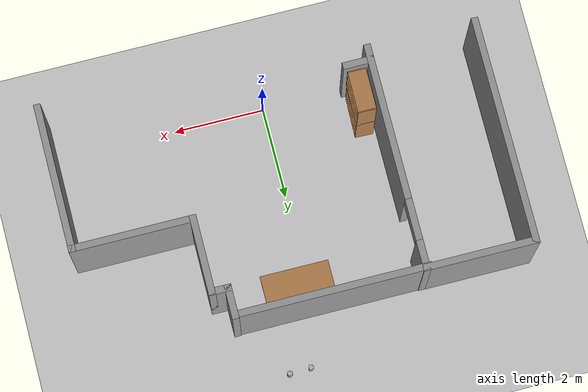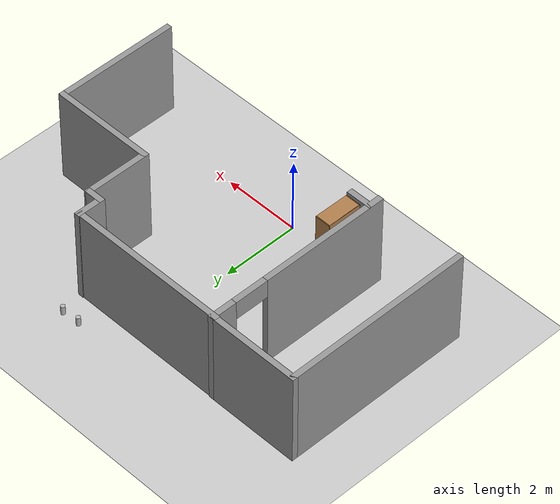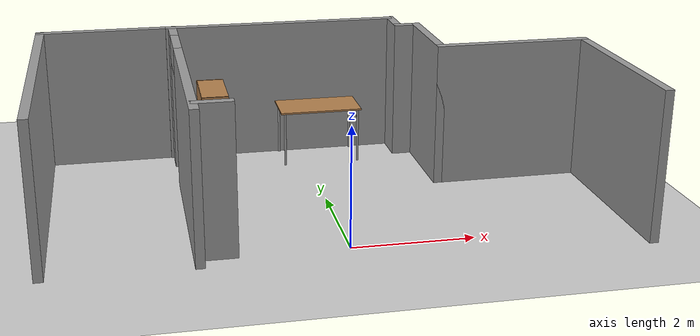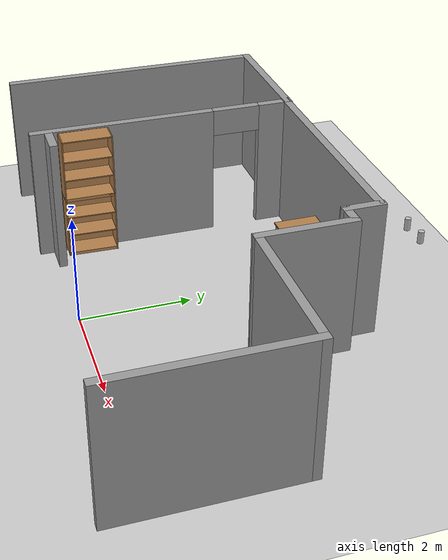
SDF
<sdf version="1.6">
 <world name="default">
  <model name="ground_plane">
   <static>1</static>
   <link name="link">
    <collision name="collision">
     <geometry><plane><normal>0 0 1</normal><size>100 100</size></plane></geometry>
     <surface><friction><ode><mu>100</mu><mu2>50</mu2></ode></friction></surface>
    </collision>
    <visual name="visual">
     <cast_shadows>0</cast_shadows>
     <geometry><plane><normal>0 0 1</normal><size>100 100</size></plane></geometry>
     <material>
      <script><uri>file://media/materials/scripts/gazebo.material</uri><name>Gazebo/Grey</name></script>
     </material>
    </visual>
   </link>
  </model>
  <model name="amtc">
   <link name="Wall_18">
    <pose>-4.70094 2.21854 0 0 0 -1.5708</pose>
    <visual name="Wall_18_Visual">
     <pose>0 0 1.25 0 -0 0</pose>
     <geometry><box><size>5 0.15 2.5</size></box></geometry>
     <material>
      <script><uri>file://media/materials/scripts/gazebo.material</uri><name>Gazebo/Grey</name></script>
      <ambient>1 1 1 1</ambient>
      <diffuse>0.7 0.7 0.7 1</diffuse>
      <specular>0.01 0.01 0.01 1</specular>
      <emissive>0 0 0 1</emissive>
     </material>
     <meta><layer>0</layer></meta>
    </visual>
    <collision name="Wall_18_Collision">
     <pose>0 0 1.25 0 -0 0</pose>
     <geometry><box><size>5 0.15 2.5</size></box></geometry>
     <surface>
      <friction>
       <ode><mu>1</mu><mu2>1</mu2><fdir1>0 0 0</fdir1><slip1>0</slip1><slip2>0</slip2></ode>
       <torsional>
        <coefficient>1</coefficient>
        <patch_radius>0</patch_radius>
        <surface_radius>0</surface_radius>
        <use_patch_radius>1</use_patch_radius>
        <ode><slip>0</slip></ode>
       </torsional>
      </friction>
      <bounce><restitution_coefficient>0</restitution_coefficient><threshold>1e+06</threshold></bounce>
      <contact>
       <collide_without_contact>0</collide_without_contact>
       <collide_without_contact_bitmask>1</collide_without_contact_bitmask>
       <collide_bitmask>1</collide_bitmask>
       <ode>
        <soft_cfm>0</soft_cfm>
        <soft_erp>0.2</soft_erp>
        <kp>1e+13</kp>
        <kd>1</kd>
        <max_vel>0.01</max_vel>
        <min_depth>0</min_depth>
       </ode>
       <bullet>
        <split_impulse>1</split_impulse>
        <split_impulse_penetration_threshold>-0.01</split_impulse_penetration_threshold>
        <soft_cfm>0</soft_cfm>
        <soft_erp>0.2</soft_erp>
        <kp>1e+13</kp>
        <kd>1</kd>
       </bullet>
      </contact>
     </surface>
    </collision>
   </link>
   <link name="Wall_21">
    <pose>-2.35094 2.21854 0 0 -0 1.5708</pose>
    <visual name="Wall_21_Visual_2">
     <pose>1.38064 0 2.25 0 -0 0</pose>
     <geometry><box><size>0.9 0.15 0.5</size></box></geometry>
     <material>
      <script><uri>file://media/materials/scripts/gazebo.material</uri><name>Gazebo/Grey</name></script>
      <ambient>1 1 1 1</ambient>
      <diffuse>0.7 0.7 0.7 1</diffuse>
      <specular>0.01 0.01 0.01 1</specular>
      <emissive>0 0 0 1</emissive>
     </material>
     <meta><layer>0</layer></meta>
    </visual>
    <visual name="Wall_21_Visual_0">
     <pose>-0.78468 0 1.25 0 -0 0</pose>
     <geometry><box><size>3.43064 0.15 2.5</size></box></geometry>
     <material>
      <script><uri>file://media/materials/scripts/gazebo.material</uri><name>Gazebo/Grey</name></script>
      <ambient>1 1 1 1</ambient>
      <diffuse>0.7 0.7 0.7 1</diffuse>
      <specular>0.01 0.01 0.01 1</specular>
      <emissive>0 0 0 1</emissive>
     </material>
     <meta><layer>0</layer></meta>
    </visual>
    <visual name="Wall_21_Visual_1">
     <pose>2.16532 0 1.25 0 -0 0</pose>
     <geometry><box><size>0.669361 0.15 2.5</size></box></geometry>
     <material>
      <script><uri>file://media/materials/scripts/gazebo.material</uri><name>Gazebo/Grey</name></script>
      <ambient>1 1 1 1</ambient>
      <diffuse>0.7 0.7 0.7 1</diffuse>
      <specular>0.01 0.01 0.01 1</specular>
      <emissive>0 0 0 1</emissive>
     </material>
     <meta><layer>0</layer></meta>
    </visual>
    <collision name="Wall_21_Collision_0">
     <pose>-0.78468 0 1.25 0 -0 0</pose>
     <geometry><box><size>3.43064 0.15 2.5</size></box></geometry>
     <surface>
      <friction>
       <ode><mu>1</mu><mu2>1</mu2><fdir1>0 0 0</fdir1><slip1>0</slip1><slip2>0</slip2></ode>
       <torsional>
        <coefficient>1</coefficient>
        <patch_radius>0</patch_radius>
        <surface_radius>0</surface_radius>
        <use_patch_radius>1</use_patch_radius>
        <ode><slip>0</slip></ode>
       </torsional>
      </friction>
      <bounce><restitution_coefficient>0</restitution_coefficient><threshold>1e+06</threshold></bounce>
      <contact>
       <collide_without_contact>0</collide_without_contact>
       <collide_without_contact_bitmask>1</collide_without_contact_bitmask>
       <collide_bitmask>1</collide_bitmask>
       <ode>
        <soft_cfm>0</soft_cfm>
        <soft_erp>0.2</soft_erp>
        <kp>1e+13</kp>
        <kd>1</kd>
        <max_vel>0.01</max_vel>
        <min_depth>0</min_depth>
       </ode>
       <bullet>
        <split_impulse>1</split_impulse>
        <split_impulse_penetration_threshold>-0.01</split_impulse_penetration_threshold>
        <soft_cfm>0</soft_cfm>
        <soft_erp>0.2</soft_erp>
        <kp>1e+13</kp>
        <kd>1</kd>
       </bullet>
      </contact>
     </surface>
    </collision>
    <collision name="Wall_21_Collision_1">
     <pose>2.16532 0 1.25 0 -0 0</pose>
     <geometry><box><size>0.669361 0.15 2.5</size></box></geometry>
     <surface>
      <friction>
       <ode><mu>1</mu><mu2>1</mu2><fdir1>0 0 0</fdir1><slip1>0</slip1><slip2>0</slip2></ode>
       <torsional>
        <coefficient>1</coefficient>
        <patch_radius>0</patch_radius>
        <surface_radius>0</surface_radius>
        <use_patch_radius>1</use_patch_radius>
        <ode><slip>0</slip></ode>
       </torsional>
      </friction>
      <bounce><restitution_coefficient>0</restitution_coefficient><threshold>1e+06</threshold></bounce>
      <contact>
       <collide_without_contact>0</collide_without_contact>
       <collide_without_contact_bitmask>1</collide_without_contact_bitmask>
       <collide_bitmask>1</collide_bitmask>
       <ode>
        <soft_cfm>0</soft_cfm>
        <soft_erp>0.2</soft_erp>
        <kp>1e+13</kp>
        <kd>1</kd>
        <max_vel>0.01</max_vel>
        <min_depth>0</min_depth>
       </ode>
       <bullet>
        <split_impulse>1</split_impulse>
        <split_impulse_penetration_threshold>-0.01</split_impulse_penetration_threshold>
        <soft_cfm>0</soft_cfm>
        <soft_erp>0.2</soft_erp>
        <kp>1e+13</kp>
        <kd>1</kd>
       </bullet>
      </contact>
     </surface>
    </collision>
    <collision name="Wall_21_Collision_2">
     <pose>1.38064 0 2.25 0 -0 0</pose>
     <geometry><box><size>0.9 0.15 0.5</size></box></geometry>
     <surface>
      <friction>
       <ode><mu>1</mu><mu2>1</mu2><fdir1>0 0 0</fdir1><slip1>0</slip1><slip2>0</slip2></ode>
       <torsional>
        <coefficient>1</coefficient>
        <patch_radius>0</patch_radius>
        <surface_radius>0</surface_radius>
        <use_patch_radius>1</use_patch_radius>
        <ode><slip>0</slip></ode>
       </torsional>
      </friction>
      <bounce><restitution_coefficient>0</restitution_coefficient><threshold>1e+06</threshold></bounce>
      <contact>
       <collide_without_contact>0</collide_without_contact>
       <collide_without_contact_bitmask>1</collide_without_contact_bitmask>
       <collide_bitmask>1</collide_bitmask>
       <ode>
        <soft_cfm>0</soft_cfm>
        <soft_erp>0.2</soft_erp>
        <kp>1e+13</kp>
        <kd>1</kd>
        <max_vel>0.01</max_vel>
        <min_depth>0</min_depth>
       </ode>
       <bullet>
        <split_impulse>1</split_impulse>
        <split_impulse_penetration_threshold>-0.01</split_impulse_penetration_threshold>
        <soft_cfm>0</soft_cfm>
        <soft_erp>0.2</soft_erp>
        <kp>1e+13</kp>
        <kd>1</kd>
       </bullet>
      </contact>
     </surface>
    </collision>
   </link>
   <link name="Wall_22">
    <pose>-3.52594 4.64354 0 0 -0 3.14159</pose>
    <visual name="Wall_22_Visual">
     <pose>0 0 1.25 0 -0 0</pose>
     <geometry><box><size>2.5 0.15 2.5</size></box></geometry>
     <material>
      <script><uri>file://media/materials/scripts/gazebo.material</uri><name>Gazebo/Grey</name></script>
      <ambient>1 1 1 1</ambient>
      <diffuse>0.7 0.7 0.7 1</diffuse>
      <specular>0.01 0.01 0.01 1</specular>
      <emissive>0 0 0 1</emissive>
     </material>
     <meta><layer>0</layer></meta>
    </visual>
    <collision name="Wall_22_Collision">
     <pose>0 0 1.25 0 -0 0</pose>
     <geometry><box><size>2.5 0.15 2.5</size></box></geometry>
     <surface>
      <friction>
       <ode><mu>1</mu><mu2>1</mu2><fdir1>0 0 0</fdir1><slip1>0</slip1><slip2>0</slip2></ode>
       <torsional>
        <coefficient>1</coefficient>
        <patch_radius>0</patch_radius>
        <surface_radius>0</surface_radius>
        <use_patch_radius>1</use_patch_radius>
        <ode><slip>0</slip></ode>
       </torsional>
      </friction>
      <bounce><restitution_coefficient>0</restitution_coefficient><threshold>1e+06</threshold></bounce>
      <contact>
       <collide_without_contact>0</collide_without_contact>
       <collide_without_contact_bitmask>1</collide_without_contact_bitmask>
       <collide_bitmask>1</collide_bitmask>
       <ode>
        <soft_cfm>0</soft_cfm>
        <soft_erp>0.2</soft_erp>
        <kp>1e+13</kp>
        <kd>1</kd>
        <max_vel>0.01</max_vel>
        <min_depth>0</min_depth>
       </ode>
       <bullet>
        <split_impulse>1</split_impulse>
        <split_impulse_penetration_threshold>-0.01</split_impulse_penetration_threshold>
        <soft_cfm>0</soft_cfm>
        <soft_erp>0.2</soft_erp>
        <kp>1e+13</kp>
        <kd>1</kd>
       </bullet>
      </contact>
     </surface>
    </collision>
   </link>
   <link name="Wall_24">
    <pose>-0.349165 4.62612 0 0 -0 0</pose>
    <inertial>
     <mass>1</mass>
     <inertia><ixx>1</ixx><ixy>0</ixy><ixz>0</ixz><iyy>1</iyy><iyz>0</iyz><izz>1</izz></inertia>
    </inertial>
    <visual name="Wall_24_Visual">
     <pose>0 0 1.25 0 -0 0</pose>
     <geometry><box><size>4.25 0.15 2.5</size></box></geometry>
     <material>
      <script><uri>file://media/materials/scripts/gazebo.material</uri><name>Gazebo/Grey</name></script>
      <ambient>1 1 1 1</ambient>
      <diffuse>0.7 0.7 0.7 1</diffuse>
      <specular>0.01 0.01 0.01 1</specular>
      <emissive>0 0 0 1</emissive>
      <shader type="vertex"><normal_map>__default__</normal_map></shader>
     </material>
     <meta><layer>0</layer></meta>
    </visual>
    <collision name="Wall_24_Collision">
     <pose>0 0 1.25 0 -0 0</pose>
     <geometry><box><size>4.25 0.15 2.5</size></box></geometry>
     <surface>
      <friction>
       <ode><mu>1</mu><mu2>1</mu2><fdir1>0 0 0</fdir1><slip1>0</slip1><slip2>0</slip2></ode>
       <torsional>
        <coefficient>1</coefficient>
        <patch_radius>0</patch_radius>
        <surface_radius>0</surface_radius>
        <use_patch_radius>1</use_patch_radius>
        <ode><slip>0</slip></ode>
       </torsional>
      </friction>
      <bounce><restitution_coefficient>0</restitution_coefficient><threshold>1e+06</threshold></bounce>
      <contact>
       <collide_without_contact>0</collide_without_contact>
       <collide_without_contact_bitmask>1</collide_without_contact_bitmask>
       <collide_bitmask>1</collide_bitmask>
       <ode>
        <soft_cfm>0</soft_cfm>
        <soft_erp>0.2</soft_erp>
        <kp>1e+13</kp>
        <kd>1</kd>
        <max_vel>0.01</max_vel>
        <min_depth>0</min_depth>
       </ode>
       <bullet>
        <split_impulse>1</split_impulse>
        <split_impulse_penetration_threshold>-0.01</split_impulse_penetration_threshold>
        <soft_cfm>0</soft_cfm>
        <soft_erp>0.2</soft_erp>
        <kp>1e+13</kp>
        <kd>1</kd>
       </bullet>
      </contact>
     </surface>
    </collision>
   </link>
   <link name="Wall_25">
    <pose>1.74906 4.34354 0 0 0 -1.5708</pose>
    <visual name="Wall_25_Visual">
     <pose>0 0 1.25 0 -0 0</pose>
     <geometry><box><size>0.75 0.15 2.5</size></box></geometry>
     <material>
      <script><uri>file://media/materials/scripts/gazebo.material</uri><name>Gazebo/Grey</name></script>
      <ambient>1 1 1 1</ambient>
      <diffuse>0.7 0.7 0.7 1</diffuse>
      <specular>0.01 0.01 0.01 1</specular>
      <emissive>0 0 0 1</emissive>
     </material>
     <meta><layer>0</layer></meta>
    </visual>
    <collision name="Wall_25_Collision">
     <pose>0 0 1.25 0 -0 0</pose>
     <geometry><box><size>0.75 0.15 2.5</size></box></geometry>
     <surface>
      <friction>
       <ode><mu>1</mu><mu2>1</mu2><fdir1>0 0 0</fdir1><slip1>0</slip1><slip2>0</slip2></ode>
       <torsional>
        <coefficient>1</coefficient>
        <patch_radius>0</patch_radius>
        <surface_radius>0</surface_radius>
        <use_patch_radius>1</use_patch_radius>
        <ode><slip>0</slip></ode>
       </torsional>
      </friction>
      <bounce><restitution_coefficient>0</restitution_coefficient><threshold>1e+06</threshold></bounce>
      <contact>
       <collide_without_contact>0</collide_without_contact>
       <collide_without_contact_bitmask>1</collide_without_contact_bitmask>
       <collide_bitmask>1</collide_bitmask>
       <ode>
        <soft_cfm>0</soft_cfm>
        <soft_erp>0.2</soft_erp>
        <kp>1e+13</kp>
        <kd>1</kd>
        <max_vel>0.01</max_vel>
        <min_depth>0</min_depth>
       </ode>
       <bullet>
        <split_impulse>1</split_impulse>
        <split_impulse_penetration_threshold>-0.01</split_impulse_penetration_threshold>
        <soft_cfm>0</soft_cfm>
        <soft_erp>0.2</soft_erp>
        <kp>1e+13</kp>
        <kd>1</kd>
       </bullet>
      </contact>
     </surface>
    </collision>
   </link>
   <link name="Wall_26">
    <pose>1.92406 4.04354 0 0 -0 0</pose>
    <visual name="Wall_26_Visual">
     <pose>0 0 1.25 0 -0 0</pose>
     <geometry><box><size>0.5 0.15 2.5</size></box></geometry>
     <material>
      <script><uri>file://media/materials/scripts/gazebo.material</uri><name>Gazebo/Grey</name></script>
      <ambient>1 1 1 1</ambient>
      <diffuse>0.7 0.7 0.7 1</diffuse>
      <specular>0.01 0.01 0.01 1</specular>
      <emissive>0 0 0 1</emissive>
     </material>
     <meta><layer>0</layer></meta>
    </visual>
    <collision name="Wall_26_Collision">
     <pose>0 0 1.25 0 -0 0</pose>
     <geometry><box><size>0.5 0.15 2.5</size></box></geometry>
     <surface>
      <friction>
       <ode><mu>1</mu><mu2>1</mu2><fdir1>0 0 0</fdir1><slip1>0</slip1><slip2>0</slip2></ode>
       <torsional>
        <coefficient>1</coefficient>
        <patch_radius>0</patch_radius>
        <surface_radius>0</surface_radius>
        <use_patch_radius>1</use_patch_radius>
        <ode><slip>0</slip></ode>
       </torsional>
      </friction>
      <bounce><restitution_coefficient>0</restitution_coefficient><threshold>1e+06</threshold></bounce>
      <contact>
       <collide_without_contact>0</collide_without_contact>
       <collide_without_contact_bitmask>1</collide_without_contact_bitmask>
       <collide_bitmask>1</collide_bitmask>
       <ode>
        <soft_cfm>0</soft_cfm>
        <soft_erp>0.2</soft_erp>
        <kp>1e+13</kp>
        <kd>1</kd>
        <max_vel>0.01</max_vel>
        <min_depth>0</min_depth>
       </ode>
       <bullet>
        <split_impulse>1</split_impulse>
        <split_impulse_penetration_threshold>-0.01</split_impulse_penetration_threshold>
        <soft_cfm>0</soft_cfm>
        <soft_erp>0.2</soft_erp>
        <kp>1e+13</kp>
        <kd>1</kd>
       </bullet>
      </contact>
     </surface>
    </collision>
   </link>
   <link name="Wall_29">
    <pose>2.09906 3.24354 0 0 0 -1.5708</pose>
    <visual name="Wall_29_Visual">
     <pose>0 0 1.25 0 -0 0</pose>
     <geometry><box><size>1.75 0.15 2.5</size></box></geometry>
     <material>
      <script><uri>file://media/materials/scripts/gazebo.material</uri><name>Gazebo/Grey</name></script>
      <ambient>1 1 1 1</ambient>
      <diffuse>0.7 0.7 0.7 1</diffuse>
      <specular>0.01 0.01 0.01 1</specular>
      <emissive>0 0 0 1</emissive>
     </material>
     <meta><layer>0</layer></meta>
    </visual>
    <collision name="Wall_29_Collision">
     <pose>0 0 1.25 0 -0 0</pose>
     <geometry><box><size>1.75 0.15 2.5</size></box></geometry>
     <surface>
      <friction>
       <ode><mu>1</mu><mu2>1</mu2><fdir1>0 0 0</fdir1><slip1>0</slip1><slip2>0</slip2></ode>
       <torsional>
        <coefficient>1</coefficient>
        <patch_radius>0</patch_radius>
        <surface_radius>0</surface_radius>
        <use_patch_radius>1</use_patch_radius>
        <ode><slip>0</slip></ode>
       </torsional>
      </friction>
      <bounce><restitution_coefficient>0</restitution_coefficient><threshold>1e+06</threshold></bounce>
      <contact>
       <collide_without_contact>0</collide_without_contact>
       <collide_without_contact_bitmask>1</collide_without_contact_bitmask>
       <collide_bitmask>1</collide_bitmask>
       <ode>
        <soft_cfm>0</soft_cfm>
        <soft_erp>0.2</soft_erp>
        <kp>1e+13</kp>
        <kd>1</kd>
        <max_vel>0.01</max_vel>
        <min_depth>0</min_depth>
       </ode>
       <bullet>
        <split_impulse>1</split_impulse>
        <split_impulse_penetration_threshold>-0.01</split_impulse_penetration_threshold>
        <soft_cfm>0</soft_cfm>
        <soft_erp>0.2</soft_erp>
        <kp>1e+13</kp>
        <kd>1</kd>
       </bullet>
      </contact>
     </surface>
    </collision>
   </link>
   <link name="Wall_30">
    <pose>3.39906 2.44354 0 0 -0 0</pose>
    <visual name="Wall_30_Visual">
     <pose>0 0 1.25 0 -0 0</pose>
     <geometry><box><size>2.75 0.15 2.5</size></box></geometry>
     <material>
      <script><uri>file://media/materials/scripts/gazebo.material</uri><name>Gazebo/Grey</name></script>
      <ambient>1 1 1 1</ambient>
      <diffuse>0.7 0.7 0.7 1</diffuse>
      <specular>0.01 0.01 0.01 1</specular>
      <emissive>0 0 0 1</emissive>
     </material>
     <meta><layer>0</layer></meta>
    </visual>
    <collision name="Wall_30_Collision">
     <pose>0 0 1.25 0 -0 0</pose>
     <geometry><box><size>2.75 0.15 2.5</size></box></geometry>
     <surface>
      <friction>
       <ode><mu>1</mu><mu2>1</mu2><fdir1>0 0 0</fdir1><slip1>0</slip1><slip2>0</slip2></ode>
       <torsional>
        <coefficient>1</coefficient>
        <patch_radius>0</patch_radius>
        <surface_radius>0</surface_radius>
        <use_patch_radius>1</use_patch_radius>
        <ode><slip>0</slip></ode>
       </torsional>
      </friction>
      <bounce><restitution_coefficient>0</restitution_coefficient><threshold>1e+06</threshold></bounce>
      <contact>
       <collide_without_contact>0</collide_without_contact>
       <collide_without_contact_bitmask>1</collide_without_contact_bitmask>
       <collide_bitmask>1</collide_bitmask>
       <ode>
        <soft_cfm>0</soft_cfm>
        <soft_erp>0.2</soft_erp>
        <kp>1e+13</kp>
        <kd>1</kd>
        <max_vel>0.01</max_vel>
        <min_depth>0</min_depth>
       </ode>
       <bullet>
        <split_impulse>1</split_impulse>
        <split_impulse_penetration_threshold>-0.01</split_impulse_penetration_threshold>
        <soft_cfm>0</soft_cfm>
        <soft_erp>0.2</soft_erp>
        <kp>1e+13</kp>
        <kd>1</kd>
       </bullet>
      </contact>
     </surface>
    </collision>
   </link>
   <link name="Wall_34">
    <pose>4.69909 0.893515 0 0 0 -1.57077</pose>
    <visual name="Wall_34_Visual">
     <pose>0 0 1.25 0 -0 0</pose>
     <geometry><box><size>3.25 0.15 2.5</size></box></geometry>
     <material>
      <script><uri>file://media/materials/scripts/gazebo.material</uri><name>Gazebo/Grey</name></script>
      <ambient>1 1 1 1</ambient>
      <diffuse>0.7 0.7 0.7 1</diffuse>
      <specular>0.01 0.01 0.01 1</specular>
      <emissive>0 0 0 1</emissive>
     </material>
     <meta><layer>0</layer></meta>
    </visual>
    <collision name="Wall_34_Collision">
     <pose>0 0 1.25 0 -0 0</pose>
     <geometry><box><size>3.25 0.15 2.5</size></box></geometry>
     <surface>
      <friction>
       <ode><mu>1</mu><mu2>1</mu2><fdir1>0 0 0</fdir1><slip1>0</slip1><slip2>0</slip2></ode>
       <torsional>
        <coefficient>1</coefficient>
        <patch_radius>0</patch_radius>
        <surface_radius>0</surface_radius>
        <use_patch_radius>1</use_patch_radius>
        <ode><slip>0</slip></ode>
       </torsional>
      </friction>
      <bounce><restitution_coefficient>0</restitution_coefficient><threshold>1e+06</threshold></bounce>
      <contact>
       <collide_without_contact>0</collide_without_contact>
       <collide_without_contact_bitmask>1</collide_without_contact_bitmask>
       <collide_bitmask>1</collide_bitmask>
       <ode>
        <soft_cfm>0</soft_cfm>
        <soft_erp>0.2</soft_erp>
        <kp>1e+13</kp>
        <kd>1</kd>
        <max_vel>0.01</max_vel>
        <min_depth>0</min_depth>
       </ode>
       <bullet>
        <split_impulse>1</split_impulse>
        <split_impulse_penetration_threshold>-0.01</split_impulse_penetration_threshold>
        <soft_cfm>0</soft_cfm>
        <soft_erp>0.2</soft_erp>
        <kp>1e+13</kp>
        <kd>1</kd>
       </bullet>
      </contact>
     </surface>
    </collision>
   </link>
   <link name="Wall_82">
    <pose>-2.08044 0.056463 0 0 -0 3.14159</pose>
    <inertial>
     <inertia><ixx>nan</ixx><ixy>0</ixy><ixz>0</ixz><iyy>nan</iyy><iyz>0</iyz><izz>nan</izz></inertia>
     <mass>0</mass>
    </inertial>
    <visual name="Wall_82_Visual">
     <pose>0 0 1.25 0 -0 0</pose>
     <geometry><box><size>0.678343 0.15 2.5</size></box></geometry>
     <material>
      <script><uri>file://media/materials/scripts/gazebo.material</uri><name>Gazebo/Grey</name></script>
      <ambient>1 1 1 1</ambient>
      <diffuse>0.7 0.7 0.7 1</diffuse>
      <specular>0.01 0.01 0.01 1</specular>
      <emissive>0 0 0 1</emissive>
     </material>
     <meta><layer>0</layer></meta>
    </visual>
    <collision name="Wall_82_Collision">
     <pose>0 0 1.25 0 -0 0</pose>
     <geometry><box><size>0.678343 0.15 2.5</size></box></geometry>
     <surface>
      <friction>
       <ode><mu>1</mu><mu2>1</mu2><fdir1>0 0 0</fdir1><slip1>0</slip1><slip2>0</slip2></ode>
       <torsional>
        <coefficient>1</coefficient>
        <patch_radius>0</patch_radius>
        <surface_radius>0</surface_radius>
        <use_patch_radius>1</use_patch_radius>
        <ode><slip>0</slip></ode>
       </torsional>
      </friction>
      <bounce><restitution_coefficient>0</restitution_coefficient><threshold>1e+06</threshold></bounce>
      <contact>
       <collide_without_contact>0</collide_without_contact>
       <collide_without_contact_bitmask>1</collide_without_contact_bitmask>
       <collide_bitmask>1</collide_bitmask>
       <ode>
        <soft_cfm>0</soft_cfm>
        <soft_erp>0.2</soft_erp>
        <kp>1e+13</kp>
        <kd>1</kd>
        <max_vel>0.01</max_vel>
        <min_depth>0</min_depth>
       </ode>
       <bullet>
        <split_impulse>1</split_impulse>
        <split_impulse_penetration_threshold>-0.01</split_impulse_penetration_threshold>
        <soft_cfm>0</soft_cfm>
        <soft_erp>0.2</soft_erp>
        <kp>1e+13</kp>
        <kd>1</kd>
       </bullet>
      </contact>
     </surface>
    </collision>
   </link>
   <model name="bookshelf">
    <static>1</static>
    <link name="link">
     <inertial><mass>1</mass></inertial>
     <collision name="back">
      <pose>0 0.005 0.6 0 -0 0</pose>
      <geometry><box><size>0.9 0.01 1.2</size></box></geometry>
     </collision>
     <visual name="visual1">
      <pose>0 0.005 0.6 0 -0 0</pose>
      <geometry><box><size>0.9 0.01 1.2</size></box></geometry>
      <material>
       <script><uri>file://media/materials/scripts/gazebo.material</uri><name>Gazebo/Wood</name></script>
      </material>
     </visual>
     <collision name="left_side">
      <pose>0.45 -0.195 0.6 0 -0 0</pose>
      <geometry><box><size>0.02 0.4 1.2</size></box></geometry>
     </collision>
     <visual name="visual2">
      <pose>0.45 -0.195 0.6 0 -0 0</pose>
      <geometry><box><size>0.02 0.4 1.2</size></box></geometry>
      <material>
       <script><uri>file://media/materials/scripts/gazebo.material</uri><name>Gazebo/Wood</name></script>
      </material>
     </visual>
     <collision name="right_side">
      <pose>-0.45 -0.195 0.6 0 -0 0</pose>
      <geometry><box><size>0.02 0.4 1.2</size></box></geometry>
     </collision>
     <visual name="visual3">
      <pose>-0.45 -0.195 0.6 0 -0 0</pose>
      <geometry><box><size>0.02 0.4 1.2</size></box></geometry>
      <material>
       <script><uri>file://media/materials/scripts/gazebo.material</uri><name>Gazebo/Wood</name></script>
      </material>
     </visual>
     <collision name="bottom">
      <pose>0 -0.195 0.03 0 -0 0</pose>
      <geometry><box><size>0.88 0.4 0.06</size></box></geometry>
     </collision>
     <visual name="visual4">
      <pose>0 -0.195 0.03 0 -0 0</pose>
      <geometry><box><size>0.88 0.4 0.06</size></box></geometry>
      <material>
       <script><uri>file://media/materials/scripts/gazebo.material</uri><name>Gazebo/Wood</name></script>
      </material>
     </visual>
     <collision name="top">
      <pose>0 -0.195 1.19 0 -0 0</pose>
      <geometry><box><size>0.88 0.4 0.02</size></box></geometry>
     </collision>
     <visual name="visual5">
      <pose>0 -0.195 1.19 0 -0 0</pose>
      <geometry><box><size>0.88 0.4 0.02</size></box></geometry>
      <material>
       <script><uri>file://media/materials/scripts/gazebo.material</uri><name>Gazebo/Wood</name></script>
      </material>
     </visual>
     <collision name="low_shelf">
      <pose>0 -0.195 0.43 0 -0 0</pose>
      <geometry><box><size>0.88 0.4 0.02</size></box></geometry>
     </collision>
     <visual name="visual6">
      <pose>0 -0.195 0.43 0 -0 0</pose>
      <geometry><box><size>0.88 0.4 0.02</size></box></geometry>
      <material>
       <script><uri>file://media/materials/scripts/gazebo.material</uri><name>Gazebo/Wood</name></script>
      </material>
     </visual>
     <collision name="high_shelf">
      <pose>0 -0.195 0.8 0 -0 0</pose>
      <geometry><box><size>0.88 0.4 0.02</size></box></geometry>
     </collision>
     <visual name="visual7">
      <pose>0 -0.195 0.8 0 -0 0</pose>
      <geometry><box><size>0.88 0.4 0.02</size></box></geometry>
      <material>
       <script><uri>file://media/materials/scripts/gazebo.material</uri><name>Gazebo/Wood</name></script>
      </material>
     </visual>
    </link>
    <pose>-2.20096 0.669212 0.163551 0 -0 1.54625</pose>
   </model>
   <model name="bookshelf_0">
    <static>1</static>
    <link name="link">
     <inertial><mass>1</mass></inertial>
     <collision name="back">
      <pose>0 0.005 0.6 0 -0 0</pose>
      <geometry><box><size>0.9 0.01 1.2</size></box></geometry>
     </collision>
     <visual name="visual1">
      <pose>0 0.005 0.6 0 -0 0</pose>
      <geometry><box><size>0.9 0.01 1.2</size></box></geometry>
      <material>
       <script><uri>file://media/materials/scripts/gazebo.material</uri><name>Gazebo/Wood</name></script>
      </material>
     </visual>
     <collision name="left_side">
      <pose>0.45 -0.195 0.6 0 -0 0</pose>
      <geometry><box><size>0.02 0.4 1.2</size></box></geometry>
     </collision>
     <visual name="visual2">
      <pose>0.45 -0.195 0.6 0 -0 0</pose>
      <geometry><box><size>0.02 0.4 1.2</size></box></geometry>
      <material>
       <script><uri>file://media/materials/scripts/gazebo.material</uri><name>Gazebo/Wood</name></script>
      </material>
     </visual>
     <collision name="right_side">
      <pose>-0.45 -0.195 0.6 0 -0 0</pose>
      <geometry><box><size>0.02 0.4 1.2</size></box></geometry>
     </collision>
     <visual name="visual3">
      <pose>-0.45 -0.195 0.6 0 -0 0</pose>
      <geometry><box><size>0.02 0.4 1.2</size></box></geometry>
      <material>
       <script><uri>file://media/materials/scripts/gazebo.material</uri><name>Gazebo/Wood</name></script>
      </material>
     </visual>
     <collision name="bottom">
      <pose>0 -0.195 0.03 0 -0 0</pose>
      <geometry><box><size>0.88 0.4 0.06</size></box></geometry>
     </collision>
     <visual name="visual4">
      <pose>0 -0.195 0.03 0 -0 0</pose>
      <geometry><box><size>0.88 0.4 0.06</size></box></geometry>
      <material>
       <script><uri>file://media/materials/scripts/gazebo.material</uri><name>Gazebo/Wood</name></script>
      </material>
     </visual>
     <collision name="top">
      <pose>0 -0.195 1.19 0 -0 0</pose>
      <geometry><box><size>0.88 0.4 0.02</size></box></geometry>
     </collision>
     <visual name="visual5">
      <pose>0 -0.195 1.19 0 -0 0</pose>
      <geometry><box><size>0.88 0.4 0.02</size></box></geometry>
      <material>
       <script><uri>file://media/materials/scripts/gazebo.material</uri><name>Gazebo/Wood</name></script>
      </material>
     </visual>
     <collision name="low_shelf">
      <pose>0 -0.195 0.43 0 -0 0</pose>
      <geometry><box><size>0.88 0.4 0.02</size></box></geometry>
     </collision>
     <visual name="visual6">
      <pose>0 -0.195 0.43 0 -0 0</pose>
      <geometry><box><size>0.88 0.4 0.02</size></box></geometry>
      <material>
       <script><uri>file://media/materials/scripts/gazebo.material</uri><name>Gazebo/Wood</name></script>
      </material>
     </visual>
     <collision name="high_shelf">
      <pose>0 -0.195 0.8 0 -0 0</pose>
      <geometry><box><size>0.88 0.4 0.02</size></box></geometry>
     </collision>
     <visual name="visual7">
      <pose>0 -0.195 0.8 0 -0 0</pose>
      <geometry><box><size>0.88 0.4 0.02</size></box></geometry>
      <material>
       <script><uri>file://media/materials/scripts/gazebo.material</uri><name>Gazebo/Wood</name></script>
      </material>
     </visual>
    </link>
    <pose>-2.19485 0.663564 1.3071 0 -0 1.5643</pose>
   </model>
   <model name="table">
    <static>1</static>
    <link name="link">
     <collision name="surface">
      <pose>0 0 1 0 -0 0</pose>
      <geometry><box><size>1.5 0.8 0.03</size></box></geometry>
      <surface><friction><ode><mu>0.6</mu><mu2>0.6</mu2></ode></friction></surface>
     </collision>
     <visual name="visual1">
      <pose>0 0 1 0 -0 0</pose>
      <geometry><box><size>1.5 0.8 0.03</size></box></geometry>
      <material>
       <script><uri>file://media/materials/scripts/gazebo.material</uri><name>Gazebo/Wood</name></script>
      </material>
     </visual>
     <collision name="front_left_leg">
      <pose>0.68 0.38 0.5 0 -0 0</pose>
      <geometry><cylinder><radius>0.02</radius><length>1</length></cylinder></geometry>
     </collision>
     <visual name="front_left_leg">
      <pose>0.68 0.38 0.5 0 -0 0</pose>
      <geometry><cylinder><radius>0.02</radius><length>1</length></cylinder></geometry>
      <material>
       <script><uri>file://media/materials/scripts/gazebo.material</uri><name>Gazebo/Grey</name></script>
      </material>
     </visual>
     <collision name="front_right_leg">
      <pose>0.68 -0.38 0.5 0 -0 0</pose>
      <geometry><cylinder><radius>0.02</radius><length>1</length></cylinder></geometry>
     </collision>
     <visual name="front_right_leg">
      <pose>0.68 -0.38 0.5 0 -0 0</pose>
      <geometry><cylinder><radius>0.02</radius><length>1</length></cylinder></geometry>
      <material>
       <script><uri>file://media/materials/scripts/gazebo.material</uri><name>Gazebo/Grey</name></script>
      </material>
     </visual>
     <collision name="back_right_leg">
      <pose>-0.68 -0.38 0.5 0 -0 0</pose>
      <geometry><cylinder><radius>0.02</radius><length>1</length></cylinder></geometry>
     </collision>
     <visual name="back_right_leg">
      <pose>-0.68 -0.38 0.5 0 -0 0</pose>
      <geometry><cylinder><radius>0.02</radius><length>1</length></cylinder></geometry>
      <material>
       <script><uri>file://media/materials/scripts/gazebo.material</uri><name>Gazebo/Grey</name></script>
      </material>
     </visual>
     <collision name="back_left_leg">
      <pose>-0.68 0.38 0.5 0 -0 0</pose>
      <geometry><cylinder><radius>0.02</radius><length>1</length></cylinder></geometry>
     </collision>
     <visual name="back_left_leg">
      <pose>-0.68 0.38 0.5 0 -0 0</pose>
      <geometry><cylinder><radius>0.02</radius><length>1</length></cylinder></geometry>
      <material>
       <script><uri>file://media/materials/scripts/gazebo.material</uri><name>Gazebo/Grey</name></script>
      </material>
     </visual>
    </link>
    <pose>0.259953 4.1379 0 0 -0 0</pose>
   </model>
   <static>1</static>
  </model>
  <model name="beer">
   <link name="link">
    <pose>0 0 0.115 0 -0 0</pose>
    <inertial>
     <mass>0.39</mass>
     <inertia><ixx>0.00058</ixx><ixy>0</ixy><ixz>0</ixz><iyy>0.00058</iyy><iyz>0</iyz><izz>0.00019</izz></inertia>
    </inertial>
    <collision name="collision">
     <geometry><cylinder><radius>0.055</radius><length>0.23</length></cylinder></geometry>
    </collision>
    <visual name="visual">
     <geometry><cylinder><radius>0.055</radius><length>0.23</length></cylinder></geometry>
     <material>
      <script>
       <uri>model://beer/materials/scripts</uri>
       <uri>model://beer/materials/textures</uri>
       <name>Beer/Diffuse</name>
      </script>
     </material>
    </visual>
   </link>
   <pose>0.441359 5.91458 1.01499 1e-05 2e-06 0.000997</pose>
  </model>
  <model name="baltica">
   <link name="link">
    <pose>0 0 0.115 0 -0 0</pose>
    <inertial>
     <mass>0.39</mass>
     <inertia><ixx>0.00058</ixx><ixy>0</ixy><ixz>0</ixz><iyy>0.00058</iyy><iyz>0</iyz><izz>0.00019</izz></inertia>
    </inertial>
    <collision name="collision">
     <geometry><cylinder><radius>0.055</radius><length>0.23</length></cylinder></geometry>
     <surface>
      <contact><ode><min_depth>0.005</min_depth></ode></contact>
      <friction><ode><mu>0.9</mu><mu2>0.9</mu2></ode></friction>
     </surface>
    </collision>
    <visual name="visual">
     <geometry><cylinder><radius>0.055</radius><length>0.23</length></cylinder></geometry>
     <material>
      <script>
       <uri>model://baltica/materials/scripts</uri>
       <uri>model://baltica/materials/textures</uri>
       <name>Baltica/Diffuse</name>
      </script>
     </material>
    </visual>
   </link>
   <pose>0.907247 5.93372 1.01451 0.000272 -3.1e-05 -0</pose>
  </model>
 </world>
</sdf>
